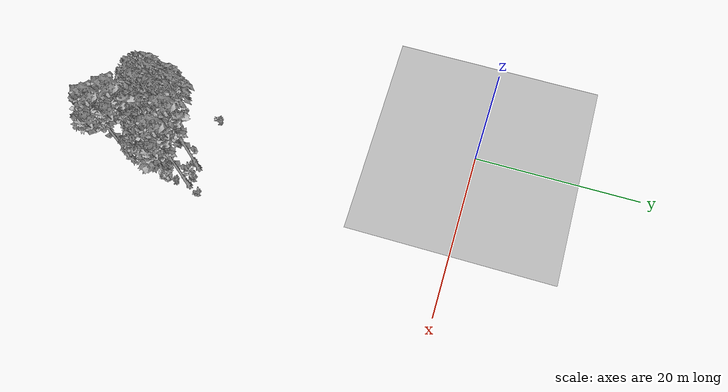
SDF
<sdf version="1.7">
 <world name="default">
  <model name="ground_plane">
   <static>1</static>
   <link name="link">
    <collision name="collision">
     <pose>-50 0 0 0 -0 0</pose>
     <geometry><plane><normal>0 0 1</normal><size>80 80</size></plane></geometry>
     <surface><contact><ode><min_depth>0.01</min_depth><max_vel>0</max_vel></ode></contact></surface>
    </collision>
    <visual name="grass">
     <cast_shadows>0</cast_shadows>
     <geometry>
      <mesh>
       <scale>0.46714285714285714 0.46714285714285714 0.1</scale>
       <uri>file://grass_plane/meshes/grass_plane.dae</uri>
      </mesh>
     </geometry>
    </visual>
   </link>
  </model>
  <model name="Tree 63">
   <static>1</static>
   <pose>10.320278208916697 -31.6091892904437 0 1.57079 -0 0</pose>
   <link name="link">
    <collision name="collision">
     <geometry><mesh><scale>3.5 5 3.5</scale><uri>model://tree_9/meshes/tree_9.obj</uri></mesh></geometry>
    </collision>
    <visual name="visual">
     <geometry><mesh><scale>3.5 5 3.5</scale><uri>model://tree_9/meshes/tree_9.obj</uri></mesh></geometry>
    </visual>
   </link>
  </model>
  <model name="Tree 79">
   <static>1</static>
   <pose>9.965478574009254 -37.96425429454424 0 1.57079 -0 0</pose>
   <link name="link">
    <collision name="collision">
     <geometry><mesh><scale>3.5 5 3.5</scale><uri>model://tree_9/meshes/tree_9.obj</uri></mesh></geometry>
    </collision>
    <visual name="visual">
     <geometry><mesh><scale>3.5 5 3.5</scale><uri>model://tree_9/meshes/tree_9.obj</uri></mesh></geometry>
    </visual>
   </link>
  </model>
  <model name="Tree 116">
   <static>1</static>
   <pose>5.176369571712819 -38.09007159669102 0 1.57079 -0 0</pose>
   <link name="link">
    <collision name="collision">
     <geometry><mesh><scale>3.5 5 3.5</scale><uri>model://tree_2/meshes/tree_2.obj</uri></mesh></geometry>
    </collision>
    <visual name="visual">
     <geometry><mesh><scale>3.5 5 3.5</scale><uri>model://tree_2/meshes/tree_2.obj</uri></mesh></geometry>
    </visual>
   </link>
  </model>
  <model name="Tree 222">
   <static>1</static>
   <pose>5.791963764561622 -35.470679799021134 0 1.57079 -0 0</pose>
   <link name="link">
    <collision name="collision">
     <geometry><mesh><scale>3.5 5 3.5</scale><uri>model://tree_2/meshes/tree_2.obj</uri></mesh></geometry>
    </collision>
    <visual name="visual">
     <geometry><mesh><scale>3.5 5 3.5</scale><uri>model://tree_2/meshes/tree_2.obj</uri></mesh></geometry>
    </visual>
   </link>
  </model>
  <model name="Tree 388">
   <static>1</static>
   <pose>12.721911908102129 -31.874209210695046 0 1.57079 -0 0</pose>
   <link name="link">
    <collision name="collision">
     <geometry><mesh><scale>3.5 5 3.5</scale><uri>model://tree_9/meshes/tree_9.obj</uri></mesh></geometry>
    </collision>
    <visual name="visual">
     <geometry><mesh><scale>3.5 5 3.5</scale><uri>model://tree_9/meshes/tree_9.obj</uri></mesh></geometry>
    </visual>
   </link>
  </model>
  <model name="Tree 499">
   <static>1</static>
   <pose>11.17657815368868 -34.59326179824135 0 1.57079 -0 0</pose>
   <link name="link">
    <collision name="collision">
     <geometry><mesh><scale>3.5 5 3.5</scale><uri>model://tree_2/meshes/tree_2.obj</uri></mesh></geometry>
    </collision>
    <visual name="visual">
     <geometry><mesh><scale>3.5 5 3.5</scale><uri>model://tree_2/meshes/tree_2.obj</uri></mesh></geometry>
    </visual>
   </link>
  </model>
  <model name="Tree 501">
   <static>1</static>
   <pose>7.84881040251873 -36.715747632860186 0 1.57079 -0 0</pose>
   <link name="link">
    <collision name="collision">
     <geometry><mesh><scale>3.5 5 3.5</scale><uri>model://tree_2/meshes/tree_2.obj</uri></mesh></geometry>
    </collision>
    <visual name="visual">
     <geometry><mesh><scale>3.5 5 3.5</scale><uri>model://tree_2/meshes/tree_2.obj</uri></mesh></geometry>
    </visual>
   </link>
  </model>
  <model name="Tree 634">
   <static>1</static>
   <pose>11.441594517725264 -39.58644245762721 0 1.57079 -0 0</pose>
   <link name="link">
    <collision name="collision">
     <geometry><mesh><scale>3.5 5 3.5</scale><uri>model://tree_9/meshes/tree_9.obj</uri></mesh></geometry>
    </collision>
    <visual name="visual">
     <geometry><mesh><scale>3.5 5 3.5</scale><uri>model://tree_9/meshes/tree_9.obj</uri></mesh></geometry>
    </visual>
   </link>
  </model>
  <model name="Bush 104">
   <static>1</static>
   <pose>9.938203755776762 -32.305022843595324 0 1.57079 -0 0</pose>
   <link name="link">
    <collision name="collision">
     <geometry><mesh><scale>2 2 2</scale><uri>model://bush_2/meshes/bush_2.obj</uri></mesh></geometry>
     <surface><contact><collide_without_contact>false</collide_without_contact></contact></surface>
    </collision>
    <visual name="visual">
     <geometry><mesh><scale>2 2 2</scale><uri>model://bush_2/meshes/bush_2.obj</uri></mesh></geometry>
    </visual>
   </link>
  </model>
  <model name="Bush 122">
   <static>1</static>
   <pose>13.351775482075759 -30.569173703182315 0 1.57079 -0 0</pose>
   <link name="link">
    <collision name="collision">
     <geometry><mesh><scale>2 2 2</scale><uri>model://bush_2/meshes/bush_2.obj</uri></mesh></geometry>
     <surface><contact><collide_without_contact>false</collide_without_contact></contact></surface>
    </collision>
    <visual name="visual">
     <geometry><mesh><scale>2 2 2</scale><uri>model://bush_2/meshes/bush_2.obj</uri></mesh></geometry>
    </visual>
   </link>
  </model>
  <model name="Bush 168">
   <static>1</static>
   <pose>11.777519160607888 -31.671015974231462 0 1.57079 -0 0</pose>
   <link name="link">
    <collision name="collision">
     <geometry><mesh><scale>2 2 2</scale><uri>model://bush_2/meshes/bush_2.obj</uri></mesh></geometry>
     <surface><contact><collide_without_contact>false</collide_without_contact></contact></surface>
    </collision>
    <visual name="visual">
     <geometry><mesh><scale>2 2 2</scale><uri>model://bush_2/meshes/bush_2.obj</uri></mesh></geometry>
    </visual>
   </link>
  </model>
  <model name="Bush 217">
   <static>1</static>
   <pose>12.506401107901915 -34.706605838465194 0 1.57079 -0 0</pose>
   <link name="link">
    <collision name="collision">
     <geometry><mesh><scale>2 2 2</scale><uri>model://bush_1/meshes/bush_1.obj</uri></mesh></geometry>
     <surface><contact><collide_without_contact>false</collide_without_contact></contact></surface>
    </collision>
    <visual name="visual">
     <geometry><mesh><scale>2 2 2</scale><uri>model://bush_1/meshes/bush_1.obj</uri></mesh></geometry>
    </visual>
   </link>
  </model>
  <model name="Bush 299">
   <static>1</static>
   <pose>3.856329276873737 -35.87365169665648 0 1.57079 -0 0</pose>
   <link name="link">
    <collision name="collision">
     <geometry><mesh><scale>2 2 2</scale><uri>model://bush_2/meshes/bush_2.obj</uri></mesh></geometry>
     <surface><contact><collide_without_contact>false</collide_without_contact></contact></surface>
    </collision>
    <visual name="visual">
     <geometry><mesh><scale>2 2 2</scale><uri>model://bush_2/meshes/bush_2.obj</uri></mesh></geometry>
    </visual>
   </link>
  </model>
  <model name="Bush 303">
   <static>1</static>
   <pose>10.716086604173391 -32.93378165889037 0 1.57079 -0 0</pose>
   <link name="link">
    <collision name="collision">
     <geometry><mesh><scale>2 2 2</scale><uri>model://bush_2/meshes/bush_2.obj</uri></mesh></geometry>
     <surface><contact><collide_without_contact>false</collide_without_contact></contact></surface>
    </collision>
    <visual name="visual">
     <geometry><mesh><scale>2 2 2</scale><uri>model://bush_2/meshes/bush_2.obj</uri></mesh></geometry>
    </visual>
   </link>
  </model>
  <model name="Bush 377">
   <static>1</static>
   <pose>11.791705050348838 -31.71380442191854 0 1.57079 -0 0</pose>
   <link name="link">
    <collision name="collision">
     <geometry><mesh><scale>2 2 2</scale><uri>model://bush_0/meshes/bush_0.obj</uri></mesh></geometry>
     <surface><contact><collide_without_contact>false</collide_without_contact></contact></surface>
    </collision>
    <visual name="visual">
     <geometry><mesh><scale>2 2 2</scale><uri>model://bush_0/meshes/bush_0.obj</uri></mesh></geometry>
    </visual>
   </link>
  </model>
  <model name="Bush 402">
   <static>1</static>
   <pose>12.945333811611341 -33.035225956728326 0 1.57079 -0 0</pose>
   <link name="link">
    <collision name="collision">
     <geometry><mesh><scale>2 2 2</scale><uri>model://bush_5/meshes/bush_5.obj</uri></mesh></geometry>
     <surface><contact><collide_without_contact>false</collide_without_contact></contact></surface>
    </collision>
    <visual name="visual">
     <geometry><mesh><scale>2 2 2</scale><uri>model://bush_5/meshes/bush_5.obj</uri></mesh></geometry>
    </visual>
   </link>
  </model>
  <model name="Bush 467">
   <static>1</static>
   <pose>4.2880775878979165 -30.77701429362928 0 1.57079 -0 0</pose>
   <link name="link">
    <collision name="collision">
     <geometry><mesh><scale>2 2 2</scale><uri>model://bush_5/meshes/bush_5.obj</uri></mesh></geometry>
     <surface><contact><collide_without_contact>false</collide_without_contact></contact></surface>
    </collision>
    <visual name="visual">
     <geometry><mesh><scale>2 2 2</scale><uri>model://bush_5/meshes/bush_5.obj</uri></mesh></geometry>
    </visual>
   </link>
  </model>
  <model name="Bush 559">
   <static>1</static>
   <pose>10.13883390089402 -39.426179538631715 0 1.57079 -0 0</pose>
   <link name="link">
    <collision name="collision">
     <geometry><mesh><scale>2 2 2</scale><uri>model://bush_2/meshes/bush_2.obj</uri></mesh></geometry>
     <surface><contact><collide_without_contact>false</collide_without_contact></contact></surface>
    </collision>
    <visual name="visual">
     <geometry><mesh><scale>2 2 2</scale><uri>model://bush_2/meshes/bush_2.obj</uri></mesh></geometry>
    </visual>
   </link>
  </model>
  <model name="Bush 599">
   <static>1</static>
   <pose>3.613818176389671 -39.30837370327741 0 1.57079 -0 0</pose>
   <link name="link">
    <collision name="collision">
     <geometry><mesh><scale>2 2 2</scale><uri>model://bush_1/meshes/bush_1.obj</uri></mesh></geometry>
     <surface><contact><collide_without_contact>false</collide_without_contact></contact></surface>
    </collision>
    <visual name="visual">
     <geometry><mesh><scale>2 2 2</scale><uri>model://bush_1/meshes/bush_1.obj</uri></mesh></geometry>
    </visual>
   </link>
  </model>
  <model name="Bush 615">
   <static>1</static>
   <pose>12.074250766218078 -37.62308467988912 0 1.57079 -0 0</pose>
   <link name="link">
    <collision name="collision">
     <geometry><mesh><scale>2 2 2</scale><uri>model://bush_2/meshes/bush_2.obj</uri></mesh></geometry>
     <surface><contact><collide_without_contact>false</collide_without_contact></contact></surface>
    </collision>
    <visual name="visual">
     <geometry><mesh><scale>2 2 2</scale><uri>model://bush_2/meshes/bush_2.obj</uri></mesh></geometry>
    </visual>
   </link>
  </model>
  <model name="Bush 621">
   <static>1</static>
   <pose>3.58204752727368 -38.37593978155577 0 1.57079 -0 0</pose>
   <link name="link">
    <collision name="collision">
     <geometry><mesh><scale>2 2 2</scale><uri>model://bush_2/meshes/bush_2.obj</uri></mesh></geometry>
     <surface><contact><collide_without_contact>false</collide_without_contact></contact></surface>
    </collision>
    <visual name="visual">
     <geometry><mesh><scale>2 2 2</scale><uri>model://bush_2/meshes/bush_2.obj</uri></mesh></geometry>
    </visual>
   </link>
  </model>
  <model name="Bush 637">
   <static>1</static>
   <pose>9.281348486698604 -37.25162404865192 0 1.57079 -0 0</pose>
   <link name="link">
    <collision name="collision">
     <geometry><mesh><scale>2 2 2</scale><uri>model://bush_5/meshes/bush_5.obj</uri></mesh></geometry>
     <surface><contact><collide_without_contact>false</collide_without_contact></contact></surface>
    </collision>
    <visual name="visual">
     <geometry><mesh><scale>2 2 2</scale><uri>model://bush_5/meshes/bush_5.obj</uri></mesh></geometry>
    </visual>
   </link>
  </model>
 </world>
</sdf>
